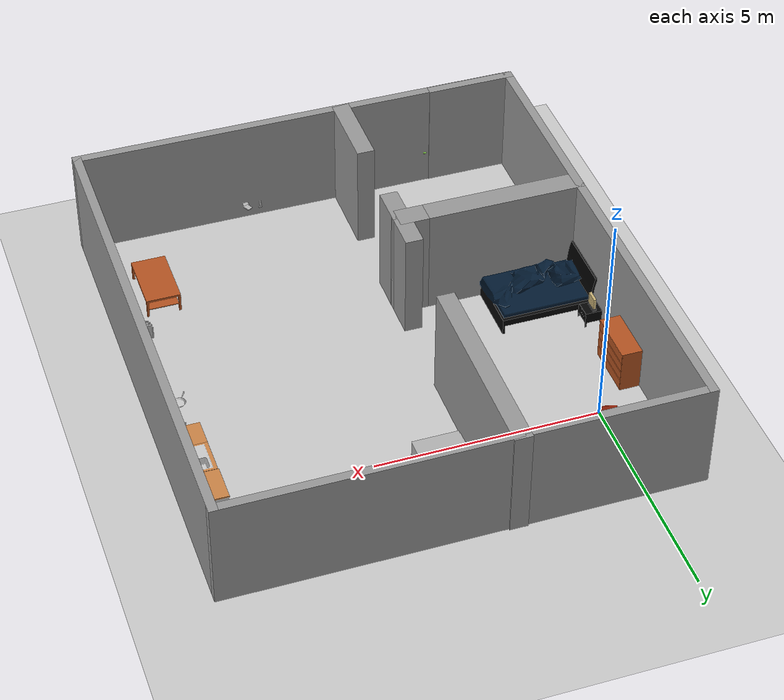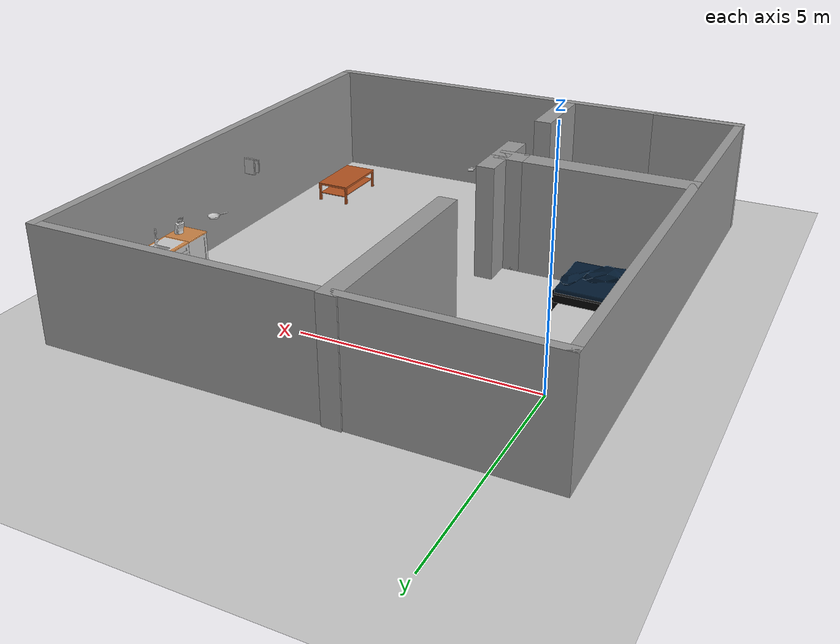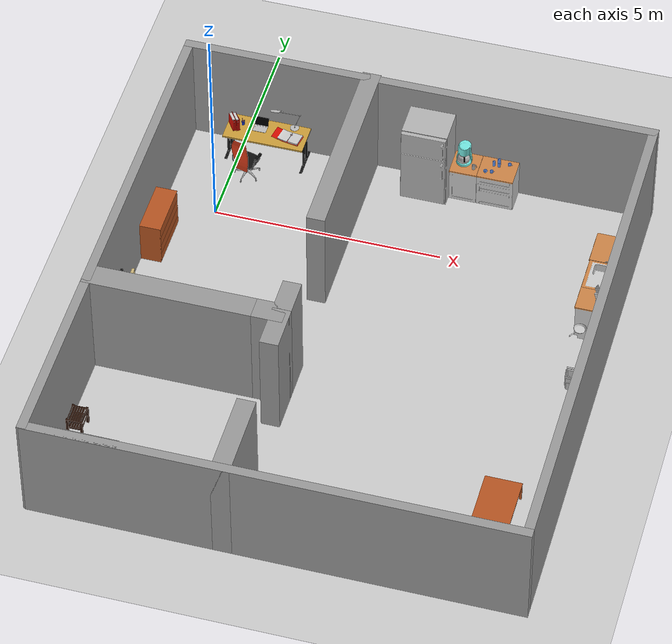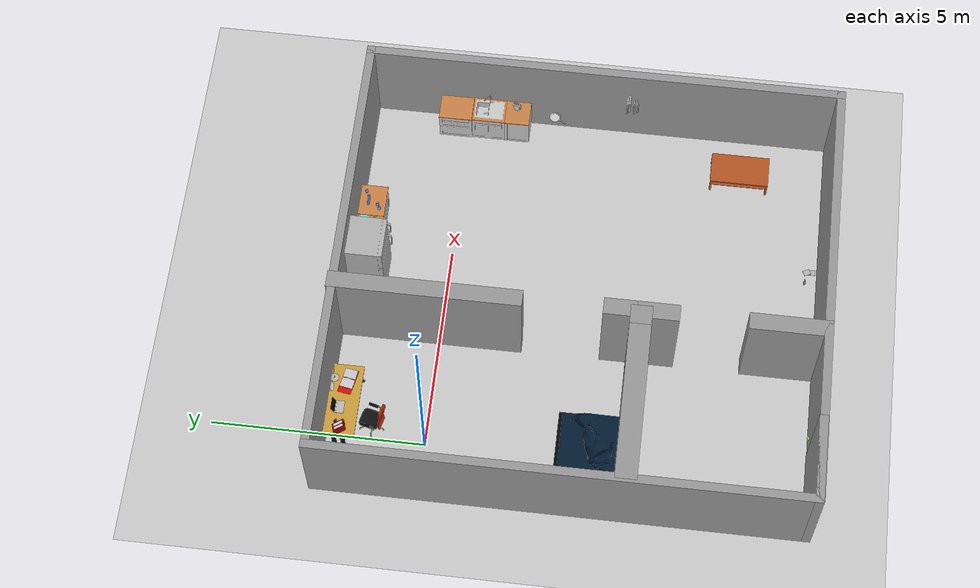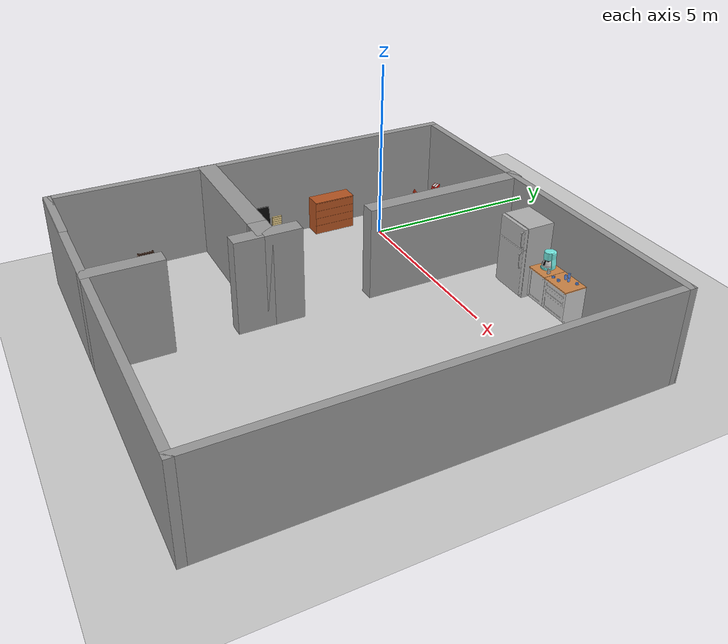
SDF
<sdf version="1.4">
 <world name="default">
  <light name="sun" type="directional">
   <pose>0 0 10 0 -0 0</pose>
   <diffuse>0.8 0.8 0.8 1</diffuse>
   <specular>0.2 0.2 0.2 1</specular>
   <attenuation>
    <range>1000</range>
    <constant>0.9</constant>
    <linear>0.01</linear>
    <quadratic>0.001</quadratic>
   </attenuation>
   <direction>-0.5 0.1 -0.9</direction>
  </light>
  <model name="ground_plane">
   <static>1</static>
   <link name="link">
    <collision name="collision">
     <geometry><plane><normal>0 0 1</normal><size>100 100</size></plane></geometry>
     <surface><friction><ode><mu>100</mu><mu2>50</mu2></ode></friction></surface>
    </collision>
    <visual name="visual">
     <cast_shadows>0</cast_shadows>
     <geometry><plane><normal>0 0 1</normal><size>100 100</size></plane></geometry>
     <material>
      <script><uri>file://media/materials/scripts/gazebo.material</uri><name>Gazebo/Grey</name></script>
     </material>
    </visual>
    <velocity_decay><linear>0</linear><angular>0</angular></velocity_decay>
   </link>
  </model>
  <physics type="ode">
   <max_step_size>0.001</max_step_size>
   <real_time_factor>1</real_time_factor>
   <real_time_update_rate>1000</real_time_update_rate>
   <gravity>0 0 -9.8</gravity>
  </physics>
  <scene><ambient>0.4 0.4 0.4 1</ambient><background>0.7 0.7 0.7 1</background><shadows>1</shadows></scene>
  <audio><device>default</device></audio>
  <spherical_coordinates>
   <surface_model>EARTH_WGS84</surface_model>
   <latitude_deg>0</latitude_deg>
   <longitude_deg>0</longitude_deg>
   <elevation>0</elevation>
   <heading_deg>0</heading_deg>
  </spherical_coordinates>
  <model name="bedroom">
   <pose>3.14845 -4.82732 0 0 -0 0</pose>
   <link name="Wall_10">
    <collision name="Wall_10_Collision">
     <geometry><box><size>3.79938 0.5 2.5</size></box></geometry>
     <pose>0 0 1.25 0 -0 0</pose>
    </collision>
    <visual name="Wall_10_Visual">
     <pose>0 0 1.25 0 -0 0</pose>
     <geometry><box><size>3.79938 0.5 2.5</size></box></geometry>
     <material>
      <script><uri>file://media/materials/scripts/gazebo.material</uri><name>Gazebo/Grey</name></script>
     </material>
    </visual>
    <velocity_decay><linear>0</linear><angular>0</angular></velocity_decay>
    <pose>-2.57757 0.196032 0 0 -0 0</pose>
   </link>
   <link name="Wall_11">
    <collision name="Wall_11_Collision">
     <geometry><box><size>0.661459 0.5 2.5</size></box></geometry>
     <pose>0 0 1.25 0 -0 0</pose>
    </collision>
    <visual name="Wall_11_Visual">
     <pose>0 0 1.25 0 -0 0</pose>
     <geometry><box><size>0.661459 0.5 2.5</size></box></geometry>
     <material>
      <script><uri>file://media/materials/scripts/gazebo.material</uri><name>Gazebo/Grey</name></script>
     </material>
    </visual>
    <velocity_decay><linear>0</linear><angular>0</angular></velocity_decay>
    <pose>-0.547146 0.196032 0 0 -0 0</pose>
   </link>
   <link name="Wall_12">
    <collision name="Wall_12_Collision">
     <geometry><box><size>0.969098 0.4 2.5</size></box></geometry>
     <pose>0 0 1.25 0 -0 0</pose>
    </collision>
    <visual name="Wall_12_Visual">
     <pose>0 0 1.25 0 -0 0</pose>
     <geometry><box><size>0.969098 0.4 2.5</size></box></geometry>
     <material>
      <script><uri>file://media/materials/scripts/gazebo.material</uri><name>Gazebo/Grey</name></script>
     </material>
    </visual>
    <velocity_decay><linear>0</linear><angular>0</angular></velocity_decay>
    <pose>-0.316416 -0.188517 0 0 0 -1.5708</pose>
   </link>
   <link name="Wall_14">
    <collision name="Wall_14_Collision">
     <geometry><box><size>1.89202 0.4 2.5</size></box></geometry>
     <pose>0 0 1.25 0 -0 0</pose>
    </collision>
    <visual name="Wall_14_Visual">
     <pose>0 0 1.25 0 -0 0</pose>
     <geometry><box><size>1.89202 0.4 2.5</size></box></geometry>
     <material>
      <script><uri>file://media/materials/scripts/gazebo.material</uri><name>Gazebo/Grey</name></script>
     </material>
    </visual>
    <velocity_decay><linear>0</linear><angular>0</angular></velocity_decay>
    <pose>-0.316416 -3.17262 0 0 0 -1.5708</pose>
   </link>
   <link name="Wall_16">
    <collision name="Wall_16_Collision">
     <geometry><box><size>0.969098 0.4 2.5</size></box></geometry>
     <pose>0 0 1.25 0 -0 0</pose>
    </collision>
    <visual name="Wall_16_Visual">
     <pose>0 0 1.25 0 -0 0</pose>
     <geometry><box><size>0.969098 0.4 2.5</size></box></geometry>
     <material>
      <script><uri>file://media/materials/scripts/gazebo.material</uri><name>Gazebo/Grey</name></script>
     </material>
    </visual>
    <velocity_decay><linear>0</linear><angular>0</angular></velocity_decay>
    <pose>-0.316416 0.580581 0 0 -0 1.5708</pose>
   </link>
   <link name="Wall_18">
    <collision name="Wall_18_Collision">
     <geometry><box><size>4.47619 0.4 2.5</size></box></geometry>
     <pose>0 0 1.25 0 -0 0</pose>
    </collision>
    <visual name="Wall_18_Visual">
     <pose>0 0 1.25 0 -0 0</pose>
     <geometry><box><size>4.47619 0.4 2.5</size></box></geometry>
     <material>
      <script><uri>file://media/materials/scripts/gazebo.material</uri><name>Gazebo/Grey</name></script>
     </material>
    </visual>
    <velocity_decay><linear>0</linear><angular>0</angular></velocity_decay>
    <pose>-0.34718 5.13364 0 0 -0 1.5708</pose>
   </link>
   <link name="Wall_3">
    <collision name="Wall_3_Collision">
     <geometry><box><size>2.066 0.2 2.5</size></box></geometry>
     <pose>0 0 1.25 0 -0 0</pose>
    </collision>
    <visual name="Wall_3_Visual">
     <pose>0 0 1.25 0 -0 0</pose>
     <geometry><box><size>2.066 0.2 2.5</size></box></geometry>
     <material>
      <script><uri>file://media/materials/scripts/gazebo.material</uri><name>Gazebo/Grey</name></script>
     </material>
    </visual>
    <velocity_decay><linear>0</linear><angular>0</angular></velocity_decay>
    <pose>-3.45643 -4.00415 0 0 -0 3.14159</pose>
   </link>
   <link name="Wall_4">
    <collision name="Wall_4_Collision">
     <geometry><box><size>11.441 0.2 2.5</size></box></geometry>
     <pose>0 0 1.25 0 -0 0</pose>
    </collision>
    <visual name="Wall_4_Visual">
     <pose>0 0 1.25 0 -0 0</pose>
     <geometry><box><size>11.441 0.2 2.5</size></box></geometry>
     <material>
      <script><uri>file://media/materials/scripts/gazebo.material</uri><name>Gazebo/Grey</name></script>
     </material>
    </visual>
    <velocity_decay><linear>0</linear><angular>0</angular></velocity_decay>
    <pose>-4.38944 1.61637 0 0 -0 1.5708</pose>
   </link>
   <link name="Wall_5">
    <collision name="Wall_5_Collision">
     <geometry><box><size>10.4298 0.2 2.5</size></box></geometry>
     <pose>0 0 1.25 0 -0 0</pose>
    </collision>
    <visual name="Wall_5_Visual">
     <pose>0 0 1.25 0 -0 0</pose>
     <geometry><box><size>10.4298 0.2 2.5</size></box></geometry>
     <material>
      <script><uri>file://media/materials/scripts/gazebo.material</uri><name>Gazebo/Grey</name></script>
     </material>
    </visual>
    <velocity_decay><linear>0</linear><angular>0</angular></velocity_decay>
    <pose>0.725442 7.23688 0 0 -0 0</pose>
   </link>
   <link name="Wall_6">
    <collision name="Wall_6_Collision">
     <geometry><box><size>11.4555 0.2 2.5</size></box></geometry>
     <pose>0 0 1.25 0 -0 0</pose>
    </collision>
    <visual name="Wall_6_Visual">
     <pose>0 0 1.25 0 -0 0</pose>
     <geometry><box><size>11.4555 0.2 2.5</size></box></geometry>
     <material>
      <script><uri>file://media/materials/scripts/gazebo.material</uri><name>Gazebo/Grey</name></script>
     </material>
    </visual>
    <velocity_decay><linear>0</linear><angular>0</angular></velocity_decay>
    <pose>5.84032 1.60912 0 0 0 -1.5708</pose>
   </link>
   <link name="Wall_7">
    <collision name="Wall_7_Collision">
     <geometry><box><size>10.3868 0.2 2.5</size></box></geometry>
     <pose>0 0 1.25 0 -0 0</pose>
    </collision>
    <visual name="Wall_7_Visual">
     <pose>0 0 1.25 0 -0 0</pose>
     <geometry><box><size>10.3868 0.2 2.5</size></box></geometry>
     <material>
      <script><uri>file://media/materials/scripts/gazebo.material</uri><name>Gazebo/Grey</name></script>
     </material>
    </visual>
    <velocity_decay><linear>0</linear><angular>0</angular></velocity_decay>
    <pose>0.746914 -4.01863 0 0 -0 3.14159</pose>
   </link>
   <static>1</static>
  </model>
  <model name="bed">
   <static>1</static>
   <link name="link">
    <visual name="mesh"><geometry><mesh><uri>model://meshes/bed_messy.dae</uri></mesh></geometry></visual>
    <collision name="frame">
     <pose>0 0 0.14 0 -0 0</pose>
     <geometry><box><size>1.56 2.185 0.38</size></box></geometry>
    </collision>
    <velocity_decay><linear>0</linear><angular>0</angular></velocity_decay>
   </link>
   <pose>-0.016799 -3.77321 0 0 -0 1.5708</pose>
  </model>
  <model name="desk">
   <static>1</static>
   <link name="link">
    <visual name="mesh"><geometry><mesh><uri>model://meshes/desk.dae</uri></mesh></geometry></visual>
    <collision name="top_collider">
     <pose>0 0 0.71 0 -0 0</pose>
     <geometry><box><size>1.8 0.75 0.04</size></box></geometry>
    </collision>
    <collision name="left_leg">
     <pose>0.85 0 0.345 0 -0 0</pose>
     <geometry><box><size>0.06 0.69 0.69</size></box></geometry>
    </collision>
    <collision name="right_leg">
     <pose>-0.85 0 0.345 0 -0 0</pose>
     <geometry><box><size>0.06 0.69 0.69</size></box></geometry>
    </collision>
    <velocity_decay><linear>0</linear><angular>0</angular></velocity_decay>
   </link>
   <pose>0.59912 1.95839 0 0 -0 0</pose>
  </model>
  <model name="office_chair">
   <static>1</static>
   <link name="link">
    <visual name="mesh"><geometry><mesh><uri>model://meshes/office_chair.dae</uri></mesh></geometry></visual>
    <collision name="seat">
     <pose>0 0 0.225 0 -0 0</pose>
     <geometry><box><size>0.46 0.5 0.45</size></box></geometry>
    </collision>
    <collision name="back_rest">
     <pose>0 -0.255 0.84 0 -0 0</pose>
     <geometry><box><size>0.4 0.04 0.84</size></box></geometry>
    </collision>
    <velocity_decay><linear>0</linear><angular>0</angular></velocity_decay>
   </link>
   <pose>0.342532 1.28647 0 0 0 -0.253782</pose>
  </model>
  <model name="laptop">
   <static>1</static>
   <link name="link">
    <visual name="mesh"><geometry><mesh><uri>model://meshes/laptop.dae</uri></mesh></geometry></visual>
    <collision name="collider">
     <geometry><mesh><uri>model://meshes/laptop_collision.stl</uri></mesh></geometry>
    </collision>
    <velocity_decay><linear>0</linear><angular>0</angular></velocity_decay>
   </link>
   <pose>0.433579 2.00689 0.730962 0 -0 0</pose>
  </model>
  <model name="desk_lamp">
   <static>1</static>
   <link name="link">
    <visual name="mesh"><geometry><mesh><uri>model://meshes/desk_lamp.dae</uri></mesh></geometry></visual>
    <velocity_decay><linear>0</linear><angular>0</angular></velocity_decay>
   </link>
   <pose>1.14967 2.22986 0.725892 0 0 -1.49191</pose>
  </model>
  <model name="folder_open">
   <static>1</static>
   <link name="link">
    <visual name="mesh"><geometry><mesh><uri>model://meshes/folder_open.dae</uri></mesh></geometry></visual>
    <collision name="box">
     <pose>0 0 0.025 0 -0 0</pose>
     <geometry><box><size>0.63 0.32 0.05</size></box></geometry>
    </collision>
    <velocity_decay><linear>0</linear><angular>0</angular></velocity_decay>
   </link>
   <pose>1.07776 1.90617 0.731065 0 0 -0.177012</pose>
  </model>
  <model name="folder">
   <static>1</static>
   <link name="link">
    <visual name="mesh"><geometry><mesh><uri>model://meshes/folder.dae</uri></mesh></geometry></visual>
    <collision name="box">
     <pose>0 0 0.04 0 -0 0</pose>
     <geometry><box><size>0.28 0.32 0.08</size></box></geometry>
    </collision>
    <velocity_decay><linear>0</linear><angular>0</angular></velocity_decay>
   </link>
   <pose>-0.117475 1.91973 0.882314 1.5708 5.55112e-17 2.18905</pose>
  </model>
  <model name="folder_clone">
   <static>1</static>
   <link name="link">
    <visual name="mesh"><geometry><mesh><uri>model://meshes/folder.dae</uri></mesh></geometry></visual>
    <collision name="box">
     <pose>0 0 0.04 0 -0 0</pose>
     <geometry><box><size>0.28 0.32 0.08</size></box></geometry>
    </collision>
    <velocity_decay><linear>0</linear><angular>0</angular></velocity_decay>
   </link>
   <pose>-0.194149 1.89837 0.882314 1.5708 5.55112e-17 2.18905</pose>
  </model>
  <model name="night_stand">
   <static>1</static>
   <link name="link">
    <visual name="mesh"><geometry><mesh><uri>model://meshes/night_stand.dae</uri></mesh></geometry></visual>
    <collision name="box">
     <pose>0 0 0.14 0 -0 0</pose>
     <geometry><box><size>0.42 0.42 0.38</size></box></geometry>
    </collision>
    <velocity_decay><linear>0</linear><angular>0</angular></velocity_decay>
   </link>
   <pose>-0.970153 -2.83207 0 0 -0 1.5708</pose>
  </model>
  <model name="fridge">
   <static>1</static>
   <link name="link">
    <visual name="mesh"><geometry><mesh><uri>model://meshes/fridge.dae</uri></mesh></geometry></visual>
    <collision name="collider">
     <pose>0 -0.05 1 0 -0 0</pose>
     <geometry><box><size>1 0.977 2</size></box></geometry>
    </collision>
    <velocity_decay><linear>0</linear><angular>0</angular></velocity_decay>
   </link>
   <pose>4.22487 1.9437 0 0 -0 0</pose>
  </model>
  <model name="floor_unit_narrow1">
   <static>1</static>
   <link name="link">
    <visual name="mesh">
     <geometry><mesh><uri>model://meshes/floor_unit_narrow1.dae</uri></mesh></geometry>
    </visual>
    <collision name="collider">
     <pose>0 0 0.44 0 -0 0</pose>
     <geometry><box><size>0.6 0.6 0.88</size></box></geometry>
    </collision>
    <velocity_decay><linear>0</linear><angular>0</angular></velocity_decay>
   </link>
   <pose>5.05406 2.01347 0 0 -0 0</pose>
  </model>
  <model name="floor_unit_sink">
   <static>1</static>
   <link name="link">
    <visual name="mesh"><geometry><mesh><uri>model://meshes/floor_unit_sink.dae</uri></mesh></geometry></visual>
    <collision name="collider">
     <pose>0 0 0.44 0 -0 0</pose>
     <geometry><box><size>0.8 0.6 0.88</size></box></geometry>
    </collision>
    <velocity_decay><linear>0</linear><angular>0</angular></velocity_decay>
   </link>
   <pose>8.59219 -0.482204 0 0 0 -1.5708</pose>
  </model>
  <model name="dresser">
   <static>1</static>
   <link name="link">
    <visual name="mesh"><geometry><mesh><uri>model://meshes/dresser.dae</uri></mesh></geometry></visual>
    <collision name="collider">
     <pose>0 0 0.5 0 -0 0</pose>
     <geometry><box><size>1.2 0.47 1</size></box></geometry>
    </collision>
    <velocity_decay><linear>0</linear><angular>0</angular></velocity_decay>
   </link>
   <pose>-0.912315 -1.12023 0.000499 0 -0 1.5708</pose>
  </model>
  <model name="bathroom_shelf1">
   <static>1</static>
   <link name="link">
    <visual name="mesh"><geometry><mesh><uri>model://meshes/bathroom_shelf1.dae</uri></mesh></geometry></visual>
    <collision name="collider">
     <pose>0 0 0.215 0 -0 0</pose>
     <geometry><box><size>0.45 0.35 0.43</size></box></geometry>
    </collision>
    <velocity_decay><linear>0</linear><angular>0</angular></velocity_decay>
   </link>
   <pose>-0.946972 -6.60254 0 0 0 -1.56812</pose>
  </model>
  <model name="barsoap">
   <static>1</static>
   <link name="link">
    <visual name="mesh"><geometry><mesh><uri>model://meshes/barsoap.dae</uri></mesh></geometry></visual>
    <collision name="collider"><geometry><box><size>0.081 0.054 0.012</size></box></geometry></collision>
    <velocity_decay><linear>0</linear><angular>0</angular></velocity_decay>
   </link>
   <pose>0.837346 -8.682 0.826816 0 0 -0.112423</pose>
  </model>
  <model name="floor_unit_narrow1_0">
   <static>1</static>
   <link name="link">
    <visual name="mesh">
     <geometry><mesh><uri>model://meshes/floor_unit_narrow1.dae</uri></mesh></geometry>
    </visual>
    <collision name="collider">
     <pose>0 0 0.44 0 -0 0</pose>
     <geometry><box><size>0.6 0.6 0.88</size></box></geometry>
    </collision>
    <velocity_decay><linear>0</linear><angular>0</angular></velocity_decay>
   </link>
   <pose>8.58934 -1.18065 0 0 0 -1.5708</pose>
  </model>
  <model name="floor_unit_wide">
   <static>1</static>
   <link name="link">
    <visual name="mesh"><geometry><mesh><uri>model://meshes/floor_unit_wide.dae</uri></mesh></geometry></visual>
    <collision name="collider">
     <pose>0 0 0.44 0 -0 0</pose>
     <geometry><box><size>0.8 0.6 0.88</size></box></geometry>
    </collision>
    <velocity_decay><linear>0</linear><angular>0</angular></velocity_decay>
   </link>
   <pose>8.57743 0.325876 0 0 0 -1.5708</pose>
  </model>
  <model name="floor_unit_wide_0">
   <static>1</static>
   <link name="link">
    <visual name="mesh"><geometry><mesh><uri>model://meshes/floor_unit_wide.dae</uri></mesh></geometry></visual>
    <collision name="collider">
     <pose>0 0 0.44 0 -0 0</pose>
     <geometry><box><size>0.8 0.6 0.88</size></box></geometry>
    </collision>
    <velocity_decay><linear>0</linear><angular>0</angular></velocity_decay>
   </link>
   <pose>5.75866 2.0156 0 0 -0 0</pose>
  </model>
  <model name="coffee_machine">
   <static>1</static>
   <link name="link">
    <visual name="mesh"><geometry><mesh><uri>model://meshes/coffee_machine.dae</uri></mesh></geometry></visual>
    <collision name="base_collider">
     <pose>0 0 0.02 0 -0 0</pose>
     <geometry><box><size>0.34 0.4 0.04</size></box></geometry>
    </collision>
    <collision name="top_collider">
     <pose>0 0 0.36 0 -0 0</pose>
     <geometry><cylinder><radius>0.11</radius><length>0.2</length></cylinder></geometry>
    </collision>
    <velocity_decay><linear>0</linear><angular>0</angular></velocity_decay>
   </link>
   <pose>4.99324 2.02778 0.918779 0 -0 0</pose>
  </model>
  <model name="coffee_pot">
   <static>1</static>
   <link name="link">
    <visual name="mesh"><geometry><mesh><uri>model://meshes/coffee_pot.dae</uri></mesh></geometry></visual>
    <collision name="collider">
     <pose>0 0 0.08 0 -0 0</pose>
     <geometry><cylinder><radius>0.135</radius><length>0.16</length></cylinder></geometry>
    </collision>
    <velocity_decay><linear>0</linear><angular>0</angular></velocity_decay>
   </link>
   <pose>4.98049 2.03615 0.960007 0 -0 0.387948</pose>
  </model>
  <model name="glass">
   <static>1</static>
   <link name="link">
    <visual name="mesh"><geometry><mesh><uri>model://meshes/glass.dae</uri></mesh></geometry></visual>
    <collision name="collider">
     <pose>0 0 0.06 0 -0 0</pose>
     <geometry><cylinder><radius>0.033</radius><length>0.12</length></cylinder></geometry>
    </collision>
    <velocity_decay><linear>0</linear><angular>0</angular></velocity_decay>
   </link>
   <pose>5.64453 2.08632 0.918146 0 -0 0</pose>
  </model>
  <model name="glass_clone">
   <static>1</static>
   <link name="link">
    <visual name="mesh"><geometry><mesh><uri>model://meshes/glass.dae</uri></mesh></geometry></visual>
    <collision name="collider">
     <pose>0 0 0.06 0 -0 0</pose>
     <geometry><cylinder><radius>0.033</radius><length>0.12</length></cylinder></geometry>
    </collision>
    <velocity_decay><linear>0</linear><angular>0</angular></velocity_decay>
   </link>
   <pose>5.7617 2.08149 1.02112 0 -0 0</pose>
  </model>
  <model name="glass_clone_0">
   <static>1</static>
   <link name="link">
    <visual name="mesh"><geometry><mesh><uri>model://meshes/glass.dae</uri></mesh></geometry></visual>
    <collision name="collider">
     <pose>0 0 0.06 0 -0 0</pose>
     <geometry><cylinder><radius>0.033</radius><length>0.12</length></cylinder></geometry>
    </collision>
    <velocity_decay><linear>0</linear><angular>0</angular></velocity_decay>
   </link>
   <pose>5.76142 2.0836 0.918146 0 -0 0</pose>
  </model>
  <model name="milk_pot">
   <static>1</static>
   <link name="link">
    <visual name="mesh"><geometry><mesh><uri>model://meshes/milk_pot.dae</uri></mesh></geometry></visual>
    <collision name="collider">
     <pose>0 0 0.06 0 -0 0</pose>
     <geometry><cylinder><radius>0.04</radius><length>0.12</length></cylinder></geometry>
    </collision>
    <velocity_decay><linear>0</linear><angular>0</angular></velocity_decay>
   </link>
   <pose>5.24869 1.86882 0.919065 0 -0 3.13042</pose>
  </model>
  <model name="livingroom_table">
   <static>1</static>
   <link name="link">
    <visual name="mesh"><geometry><mesh><uri>model://meshes/livingroom_table.dae</uri></mesh></geometry></visual>
    <collision name="collider">
     <pose>0 0 0.225 0 -0 0</pose>
     <geometry><box><size>1.4 0.78 0.45</size></box></geometry>
    </collision>
    <velocity_decay><linear>0</linear><angular>0</angular></velocity_decay>
   </link>
   <pose>7.87169 -6.70787 0 0 -0 1.5708</pose>
  </model>
  <model name="phone_base">
   <static>1</static>
   <link name="link">
    <visual name="mesh"><geometry><mesh><uri>model://meshes/phone_base.dae</uri></mesh></geometry></visual>
    <collision name="collider">
     <pose>0 0 0.0185 0 -0 0</pose>
     <geometry><box><size>0.084 0.061 0.037</size></box></geometry>
    </collision>
    <velocity_decay><linear>0</linear><angular>0</angular></velocity_decay>
   </link>
   <pose>4.94965 -8.42369 0.450192 0 0 -3.10578</pose>
  </model>
  <model name="phone1">
   <static>1</static>
   <link name="link">
    <visual name="mesh"><geometry><mesh><uri>model://meshes/phone1.dae</uri></mesh></geometry></visual>
    <collision name="collider"><geometry><box><size>0.049 0.033 0.168</size></box></geometry></collision>
    <velocity_decay><linear>0</linear><angular>0</angular></velocity_decay>
   </link>
   <pose>4.9513 -8.42296 0.557711 0 0 -3.09985</pose>
  </model>
  <model name="book1">
   <static>1</static>
   <link name="link">
    <visual name="mesh"><geometry><mesh><uri>model://meshes/book1.dae</uri></mesh></geometry></visual>
    <collision name="collider"><geometry><box><size>0.22 0.288 0.01</size></box></geometry></collision>
    <velocity_decay><linear>0</linear><angular>0</angular></velocity_decay>
   </link>
   <pose>8.79333 -3.86532 1.48592 -1.5708 0 0</pose>
  </model>
  <model name="book2">
   <static>1</static>
   <link name="link">
    <visual name="mesh"><geometry><mesh><uri>model://meshes/book2.dae</uri></mesh></geometry></visual>
    <collision name="collider"><geometry><box><size>0.257 0.36 0.04</size></box></geometry></collision>
    <velocity_decay><linear>0</linear><angular>0</angular></velocity_decay>
   </link>
   <pose>8.77365 -3.88457 1.52852 1.5708 -0 0</pose>
  </model>
  <model name="book3">
   <static>1</static>
   <link name="link">
    <visual name="mesh"><geometry><mesh><uri>model://meshes/book3.dae</uri></mesh></geometry></visual>
    <collision name="collider"><geometry><box><size>0.22 0.288 0.02</size></box></geometry></collision>
    <velocity_decay><linear>0</linear><angular>0</angular></velocity_decay>
   </link>
   <pose>8.69477 -3.82656 1.48124 1.5708 -0 0</pose>
  </model>
  <model name="book4">
   <static>1</static>
   <link name="link">
    <visual name="mesh"><geometry><mesh><uri>model://meshes/book4.dae</uri></mesh></geometry></visual>
    <collision name="collider"><geometry><box><size>0.14 0.192 0.015</size></box></geometry></collision>
    <velocity_decay><linear>0</linear><angular>0</angular></velocity_decay>
   </link>
   <pose>8.76805 -3.97281 1.44146 1.5708 -0 0</pose>
  </model>
  <model name="book3_clone">
   <static>1</static>
   <link name="link">
    <visual name="mesh"><geometry><mesh><uri>model://meshes/book3.dae</uri></mesh></geometry></visual>
    <collision name="collider"><geometry><box><size>0.22 0.288 0.02</size></box></geometry></collision>
    <velocity_decay><linear>0</linear><angular>0</angular></velocity_decay>
   </link>
   <pose>8.71651 -3.99462 1.48124 1.5708 -0 0</pose>
  </model>
  <model name="book3_clone_0">
   <static>1</static>
   <link name="link">
    <visual name="mesh"><geometry><mesh><uri>model://meshes/book3.dae</uri></mesh></geometry></visual>
    <collision name="collider"><geometry><box><size>0.22 0.288 0.02</size></box></geometry></collision>
    <velocity_decay><linear>0</linear><angular>0</angular></velocity_decay>
   </link>
   <pose>8.74333 -4.0573 1.48124 1.5708 -0 0</pose>
  </model>
  <model name="book4_clone">
   <static>1</static>
   <link name="link">
    <visual name="mesh"><geometry><mesh><uri>model://meshes/book4.dae</uri></mesh></geometry></visual>
    <collision name="collider"><geometry><box><size>0.14 0.192 0.015</size></box></geometry></collision>
    <velocity_decay><linear>0</linear><angular>0</angular></velocity_decay>
   </link>
   <pose>8.72336 -4.0933 1.44146 1.5708 -0 0</pose>
  </model>
  <model name="book2_clone">
   <static>1</static>
   <link name="link">
    <visual name="mesh"><geometry><mesh><uri>model://meshes/book2.dae</uri></mesh></geometry></visual>
    <collision name="collider"><geometry><box><size>0.257 0.36 0.04</size></box></geometry></collision>
    <velocity_decay><linear>0</linear><angular>0</angular></velocity_decay>
   </link>
   <pose>8.73659 -3.83221 1.52503 1.5708 -0 0</pose>
  </model>
  <model name="pencil_jar">
   <static>1</static>
   <link name="link">
    <visual name="mesh"><geometry><mesh><uri>model://meshes/pencil_jar.dae</uri></mesh></geometry></visual>
    <collision name="collider">
     <pose>0 0 0.1 0 -0 0</pose>
     <geometry><cylinder><radius>0.035</radius><length>0.2</length></cylinder></geometry>
    </collision>
    <velocity_decay><linear>0</linear><angular>0</angular></velocity_decay>
   </link>
   <pose>0.041426 2.0398 0.728069 0 -0 0</pose>
  </model>
  <model name="knives">
   <static>1</static>
   <link name="link">
    <visual name="mesh"><geometry><mesh><uri>model://meshes/knives.dae</uri></mesh></geometry></visual>
    <collision name="collider">
     <geometry><mesh><uri>model://meshes/knives_collision.stl</uri></mesh></geometry>
    </collision>
    <velocity_decay><linear>0</linear><angular>0</angular></velocity_decay>
   </link>
   <pose>8.70013 -1.15016 0.881042 0 0 -1.86308</pose>
  </model>
  <model name="frying_pan">
   <static>1</static>
   <link name="link">
    <visual name="mesh"><geometry><mesh><uri>model://meshes/frying_pan.dae</uri></mesh></geometry></visual>
    <collision name="collider">
     <pose>0 0 0.032 0 -0 0</pose>
     <geometry><cylinder><radius>0.135</radius><length>0.064</length></cylinder></geometry>
    </collision>
    <velocity_decay><linear>0</linear><angular>0</angular></velocity_decay>
   </link>
   <pose>8.51127 -2.10058 0.95302 0 0 -2.12584</pose>
  </model>
  <model name="cup">
   <static>1</static>
   <link name="link">
    <visual name="mesh"><geometry><mesh><uri>model://meshes/cup.dae</uri></mesh></geometry></visual>
    <collision name="collider">
     <pose>0 0 0.025 0 -0 0</pose>
     <geometry><cylinder><radius>0.04</radius><length>0.05</length></cylinder></geometry>
    </collision>
    <velocity_decay><linear>0</linear><angular>0</angular></velocity_decay>
   </link>
   <pose>5.97153 2.16933 0.922223 0 -0 0</pose>
  </model>
  <model name="cup_clone">
   <static>1</static>
   <link name="link">
    <visual name="mesh"><geometry><mesh><uri>model://meshes/cup.dae</uri></mesh></geometry></visual>
    <collision name="collider">
     <pose>0 0 0.025 0 -0 0</pose>
     <geometry><cylinder><radius>0.04</radius><length>0.05</length></cylinder></geometry>
    </collision>
    <velocity_decay><linear>0</linear><angular>0</angular></velocity_decay>
   </link>
   <pose>5.64698 1.86296 0.922223 0 -0 0</pose>
  </model>
  <model name="cup_clone_clone">
   <static>1</static>
   <link name="link">
    <visual name="mesh"><geometry><mesh><uri>model://meshes/cup.dae</uri></mesh></geometry></visual>
    <collision name="collider">
     <pose>0 0 0.025 0 -0 0</pose>
     <geometry><cylinder><radius>0.04</radius><length>0.05</length></cylinder></geometry>
    </collision>
    <velocity_decay><linear>0</linear><angular>0</angular></velocity_decay>
   </link>
   <pose>5.52892 1.80473 0.96566 0 -0.257538 -0.322076</pose>
  </model>
  <model name="bluray">
   <static>1</static>
   <link name="link">
    <visual name="mesh"><geometry><mesh><uri>model://meshes/bluray.dae</uri></mesh></geometry></visual>
    <collision name="collider"><geometry><box><size>0.132 0.168 0.014</size></box></geometry></collision>
    <velocity_decay><linear>0</linear><angular>0</angular></velocity_decay>
   </link>
   <pose>5.23097 -8.46502 0.471747 0 -0 0.456145</pose>
  </model>
  <model name="bluray_clone">
   <static>1</static>
   <link name="link">
    <visual name="mesh"><geometry><mesh><uri>model://meshes/bluray.dae</uri></mesh></geometry></visual>
    <collision name="collider"><geometry><box><size>0.132 0.168 0.014</size></box></geometry></collision>
    <velocity_decay><linear>0</linear><angular>0</angular></velocity_decay>
   </link>
   <pose>5.24323 -8.58604 0.456237 0 -0 0</pose>
  </model>
  <model name="night_light">
   <static>1</static>
   <link name="link">
    <visual name="mesh"><geometry><mesh><uri>model://meshes/night_light.dae</uri></mesh></geometry></visual>
    <collision name="box">
     <pose>0 0 0.16 0 -0 0</pose>
     <geometry><box><size>0.3 0.06 0.32</size></box></geometry>
    </collision>
    <velocity_decay><linear>0</linear><angular>0</angular></velocity_decay>
   </link>
   <pose>-0.977696 -2.80758 0.378883 0 0 -1.5708</pose>
  </model>
 </world>
</sdf>
